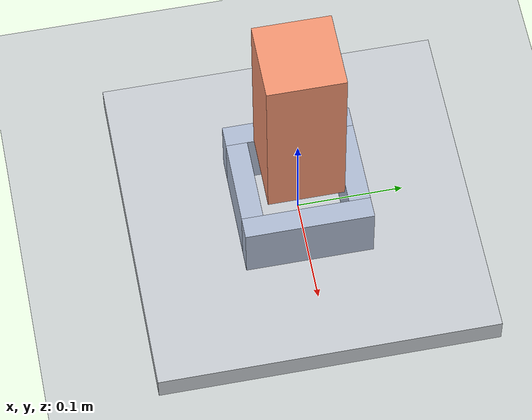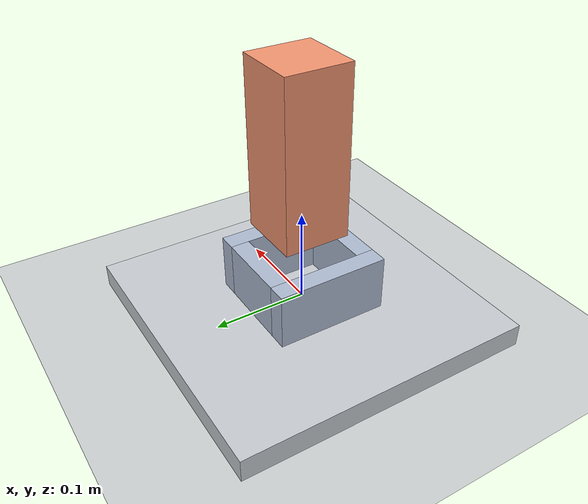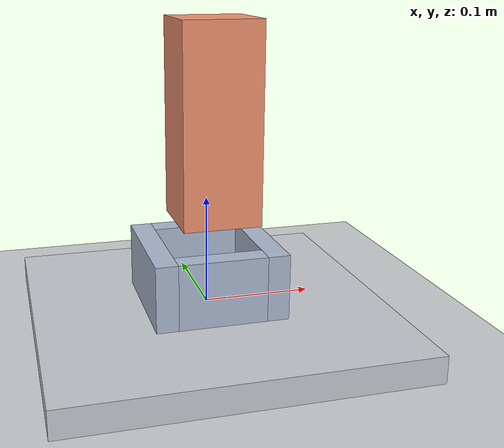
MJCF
<mujoco model="rect_peg_in_hole_soft">

  <option timestep="0.005"
          solver="Newton"
          iterations="10"
          ls_iterations="50"
          gravity="0 0 0"
          cone="pyramidal"/>

  <visual>
    <global offwidth="1280" offheight="900"/>
    <headlight ambient="0.35 0.35 0.35" diffuse="0.65 0.65 0.65" specular="0.1 0.1 0.1"/>
  </visual>

  <asset>
    <texture name="checker" type="2d" builtin="checker"
             width="512" height="512"
             rgb1="0.92 0.92 0.88" rgb2="0.68 0.72 0.76"/>
    <material name="checker_mat" texture="checker" texrepeat="10 10" reflectance="0.15"/>
  </asset>

  <default>
    <geom condim="3"
          friction="1.0 0.005 0.0001"
          solref="0.03 1"
          solimp="0 0.9 0.01 0.5 2"/>
  </default>

  <worldbody>
    <light name="key_light" pos="0.35 -0.55 1.0" dir="-0.35 0.55 -1"/>
    <geom name="floor"
          type="plane"
          pos="0 0 -0.026"
          size="0.5 0.5 0.01"
          contype="0"
          conaffinity="0"
          material="checker_mat"/>

    <geom name="table_collision"
          type="box"
          pos="0 0 -0.0125"
          size="0.16 0.16 0.0125"
          contype="1"
          conaffinity="1"
          rgba="0.78 0.80 0.82 1"/>

    <geom name="hole_wall_pos_x_collision"
          type="box"
          pos="0.05 0 0.03"
          size="0.01 0.06 0.03"
          contype="1"
          conaffinity="1"
          rgba="0.68 0.73 0.82 1"/>
    <geom name="hole_wall_neg_x_collision"
          type="box"
          pos="-0.05 0 0.03"
          size="0.01 0.06 0.03"
          contype="1"
          conaffinity="1"
          rgba="0.68 0.73 0.82 1"/>
    <geom name="hole_wall_pos_y_collision"
          type="box"
          pos="0 0.05 0.03"
          size="0.04 0.01 0.03"
          contype="1"
          conaffinity="1"
          rgba="0.68 0.73 0.82 1"/>
    <geom name="hole_wall_neg_y_collision"
          type="box"
          pos="0 -0.05 0.03"
          size="0.04 0.01 0.03"
          contype="1"
          conaffinity="1"
          rgba="0.68 0.73 0.82 1"/>

    <body name="peg" pos="0.006 0 0.17">
      <joint name="insertion_slide" type="slide" axis="0 0 1"/>
      <geom name="peg_collision"
            type="box"
            size="0.0355 0.0355 0.09"
            mass="0.49468"
            contype="1"
            conaffinity="1"
            rgba="0.95 0.58 0.44 1"/>
    </body>
  </worldbody>

  <actuator>
    <velocity name="insertion_velocity_servo"
              joint="insertion_slide"
              kv="20"
              ctrllimited="true"
              ctrlrange="-1 1"/>
  </actuator>
</mujoco>
